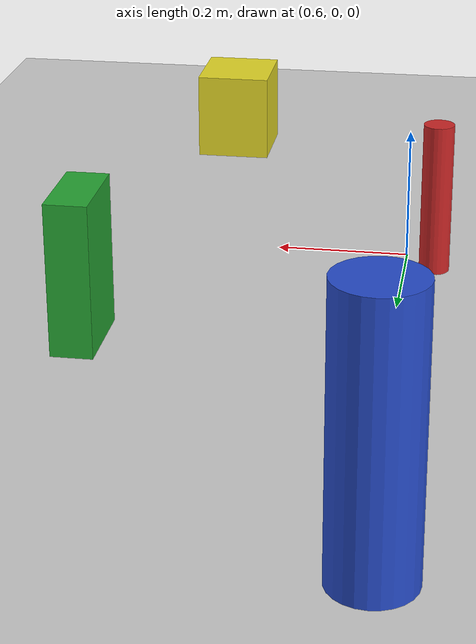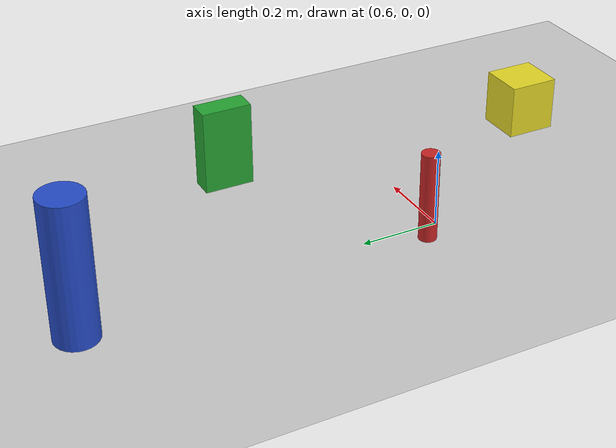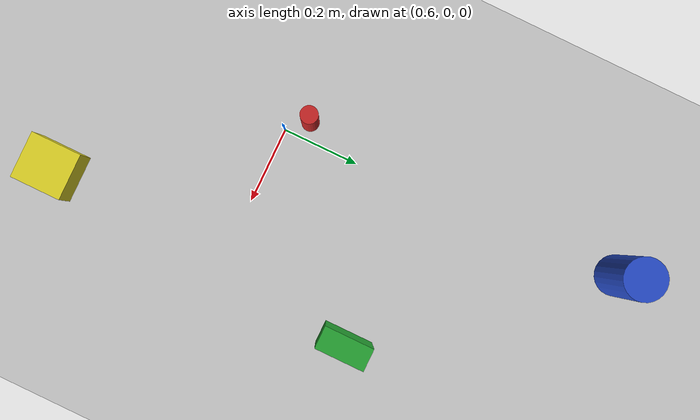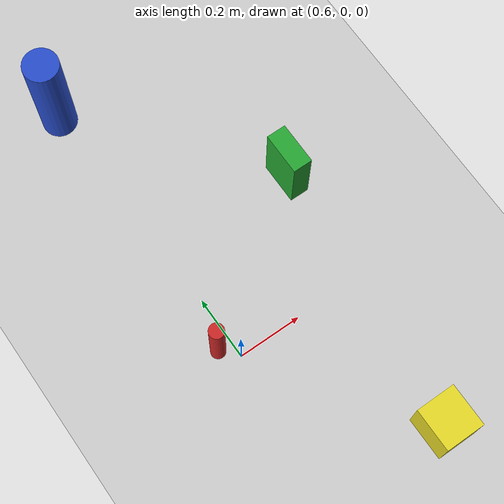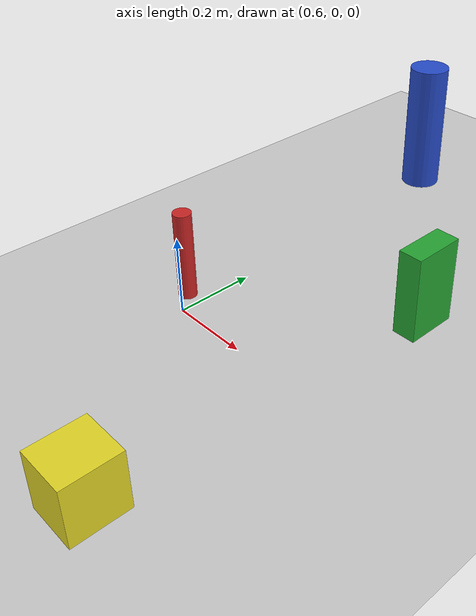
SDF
<sdf version="1.7">
 <world name="default">
  <light name="sun" type="directional">
   <pose>0 0 10 0 -0 0</pose>
   <diffuse>0.8 0.8 0.8 1</diffuse>
   <specular>0.2 0.2 0.2 1</specular>
   <attenuation>
    <range>1000</range>
    <constant>0.9</constant>
    <linear>0.01</linear>
    <quadratic>0.001</quadratic>
   </attenuation>
   <direction>-0.5 0.1 -0.9</direction>
   <spot><inner_angle>0</inner_angle><outer_angle>0</outer_angle><falloff>0</falloff></spot>
  </light>
  <model name="ground_plane">
   <static>1</static>
   <link name="link">
    <collision name="collision">
     <geometry><plane><normal>0 0 1</normal><size>100 100</size></plane></geometry>
     <surface><friction><ode><mu>100</mu><mu2>50</mu2></ode></friction></surface>
    </collision>
    <visual name="visual">
     <cast_shadows>0</cast_shadows>
     <geometry><plane><normal>0 0 1</normal><size>100 100</size></plane></geometry>
     <material>
      <script><uri>file://media/materials/scripts/gazebo.material</uri><name>Gazebo/Gray</name></script>
     </material>
    </visual>
   </link>
  </model>
  <gravity>0 0 -9.8</gravity>
  <magnetic_field>6e-06 2.3e-05 -4.2e-05</magnetic_field>
  <atmosphere type="adiabatic"/>
  <physics type="ode">
   <max_step_size>0.001</max_step_size>
   <real_time_factor>1</real_time_factor>
   <real_time_update_rate>1000</real_time_update_rate>
  </physics>
  <scene><ambient>0.4 0.4 0.4 1</ambient><background>0.7 0.7 0.7 1</background><shadows>1</shadows></scene>
  <audio><device>default</device></audio>
  <spherical_coordinates>
   <surface_model>EARTH_WGS84</surface_model>
   <latitude_deg>0</latitude_deg>
   <longitude_deg>0</longitude_deg>
   <elevation>0</elevation>
   <heading_deg>0</heading_deg>
  </spherical_coordinates>
  <model name="unit_cylinder">
   <pose>0.555287 0.050085 0.11551 -1e-06 -1e-06 0.004577</pose>
   <link name="link">
    <inertial>
     <mass>1</mass>
     <inertia><ixx>0.145833</ixx><ixy>0</ixy><ixz>0</ixz><iyy>0.145833</iyy><iyz>0</iyz><izz>0.125</izz></inertia>
    </inertial>
    <collision name="collision">
     <geometry><cylinder><radius>0.0228735</radius><length>0.231021</length></cylinder></geometry>
    </collision>
    <visual name="visual">
     <geometry><cylinder><radius>0.0228735</radius><length>0.231021</length></cylinder></geometry>
     <material>
      <script><uri>file://media/materials/scripts/gazebo.material</uri><name>Gazebo/Red</name></script>
     </material>
    </visual>
   </link>
  </model>
  <plugin name="gazebo_link_attacher" filename="libgazebo_link_attacher.so"/>
  <model name="unit_box">
   <pose>1.02353 0.369743 0.110636 3e-06 -3e-06 0.000894</pose>
   <link name="link">
    <inertial>
     <mass>1</mass>
     <inertia>
      <ixx>0.166667</ixx>
      <ixy>0</ixy>
      <ixz>0</ixz>
      <iyy>0.166667</iyy>
      <iyz>0</iyz>
      <izz>0.166667</izz>
     </inertia>
    </inertial>
    <collision name="collision">
     <geometry><box><size>0.0602742 0.130419 0.221272</size></box></geometry>
    </collision>
    <visual name="visual">
     <geometry><box><size>0.0602742 0.130419 0.221272</size></box></geometry>
     <material>
      <script><name>Gazebo/Green</name><uri>file://media/materials/scripts/gazebo.material</uri></script>
     </material>
    </visual>
   </link>
  </model>
  <model name="unit_box_0">
   <pose>0.943048 -0.483141 0.07212 -2e-06 2e-06 2.4e-05</pose>
   <link name="link">
    <inertial>
     <mass>1</mass>
     <inertia>
      <ixx>0.166667</ixx>
      <ixy>0</ixy>
      <ixz>0</ixz>
      <iyy>0.166667</iyy>
      <iyz>0</iyz>
      <izz>0.166667</izz>
     </inertia>
    </inertial>
    <collision name="collision"><geometry><box><size>0.122961 0.132695 0.14424</size></box></geometry></collision>
    <visual name="visual">
     <geometry><box><size>0.122961 0.132695 0.14424</size></box></geometry>
     <material>
      <script><name>Gazebo/Yellow</name><uri>file://media/materials/scripts/gazebo.material</uri></script>
     </material>
    </visual>
   </link>
  </model>
  <model name="unit_cylinder_0">
   <pose>0.569015 0.920093 0.177751 0 -0 1.1e-05</pose>
   <link name="link">
    <inertial>
     <mass>1</mass>
     <inertia><ixx>0.145833</ixx><ixy>0</ixy><ixz>0</ixz><iyy>0.145833</iyy><iyz>0</iyz><izz>0.125</izz></inertia>
    </inertial>
    <collision name="collision">
     <geometry><cylinder><radius>0.053634</radius><length>0.355522</length></cylinder></geometry>
    </collision>
    <visual name="visual">
     <geometry><cylinder><radius>0.053634</radius><length>0.355522</length></cylinder></geometry>
     <material>
      <script><name>Gazebo/Blue</name><uri>file://media/materials/scripts/gazebo.material</uri></script>
     </material>
    </visual>
   </link>
  </model>
 </world>
</sdf>
